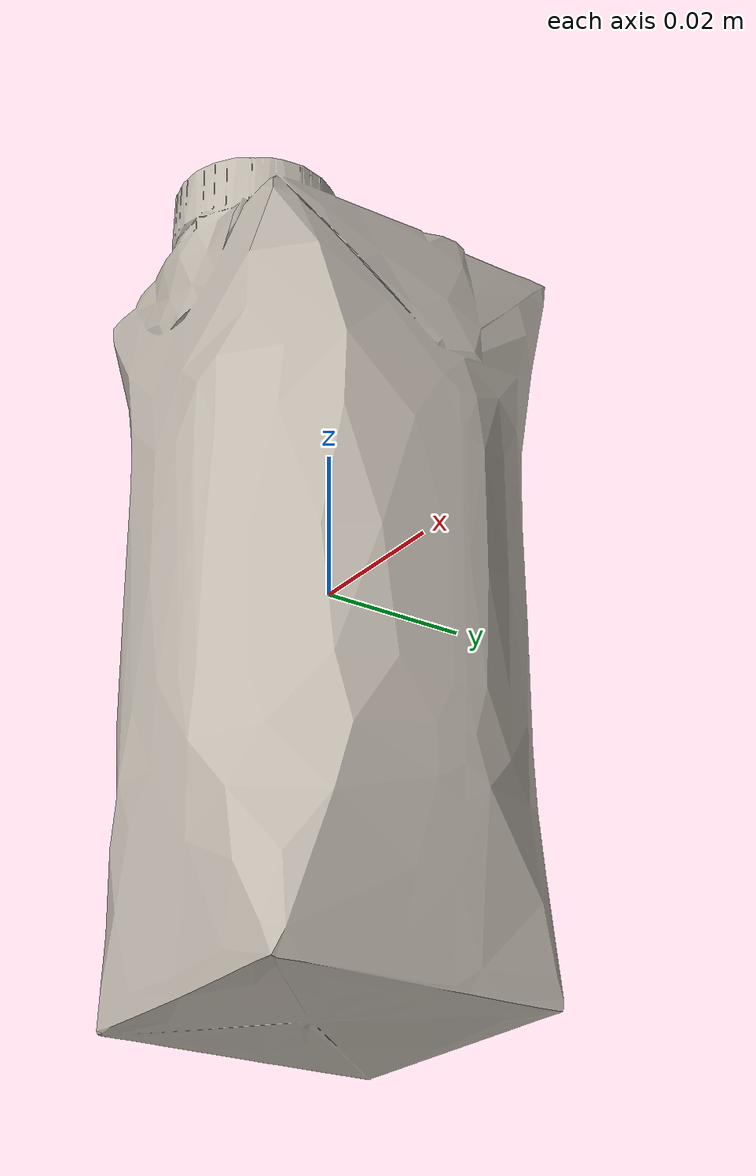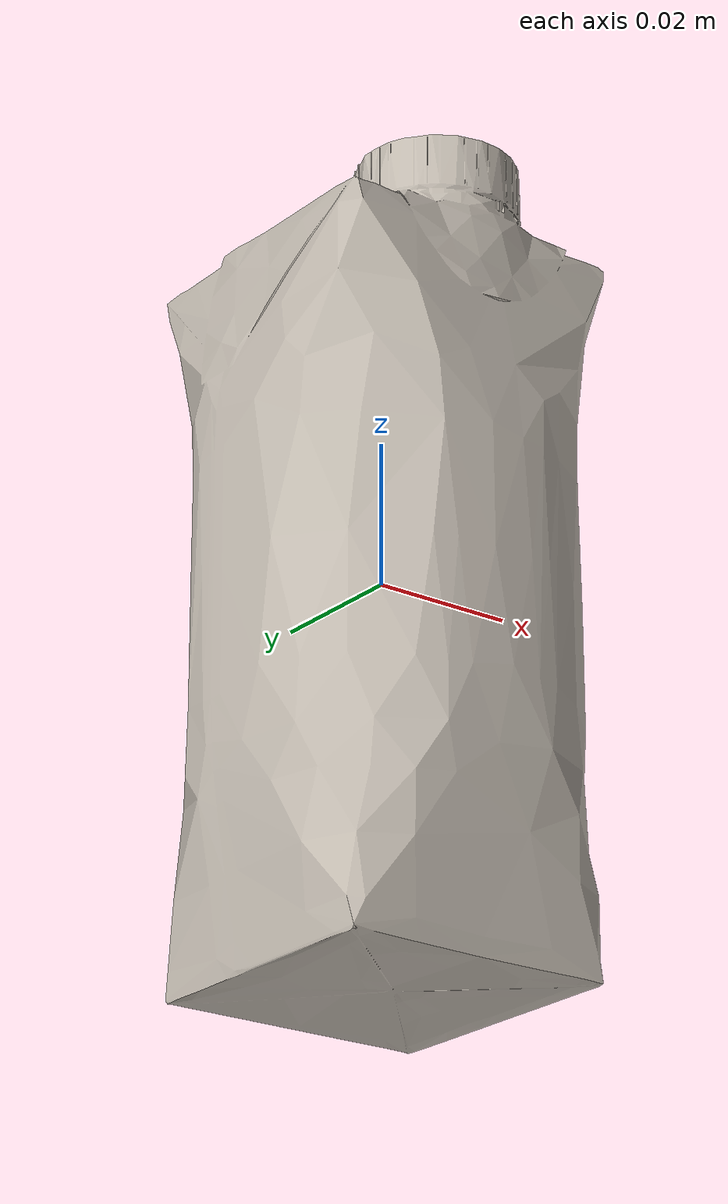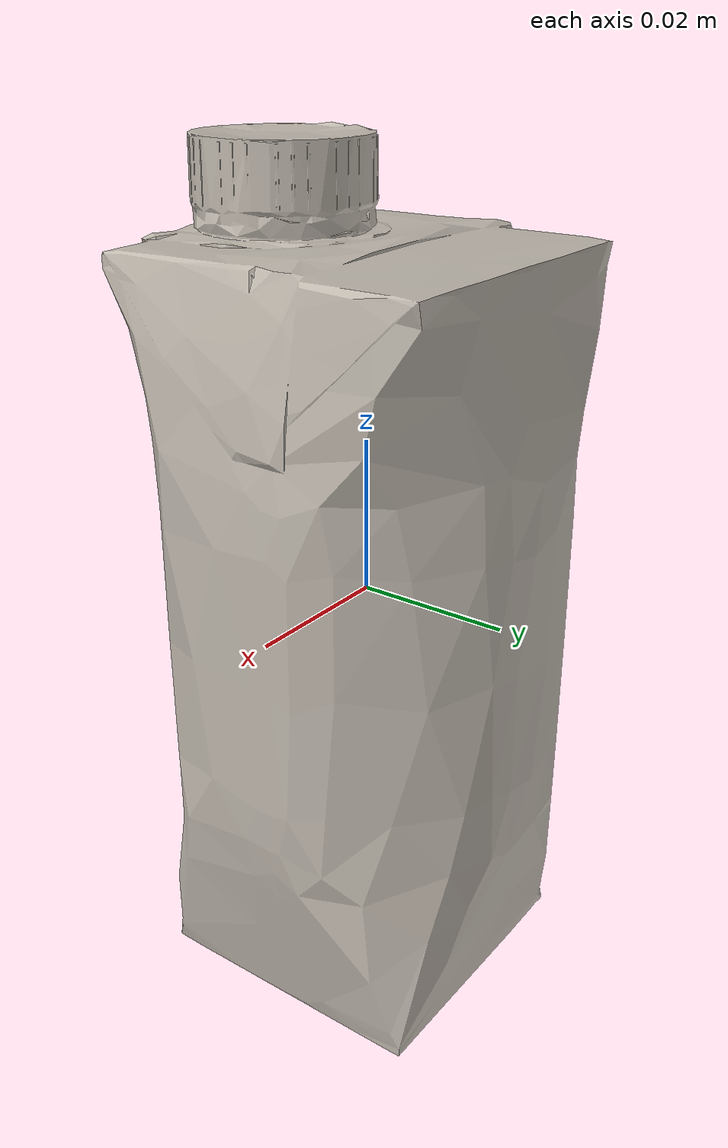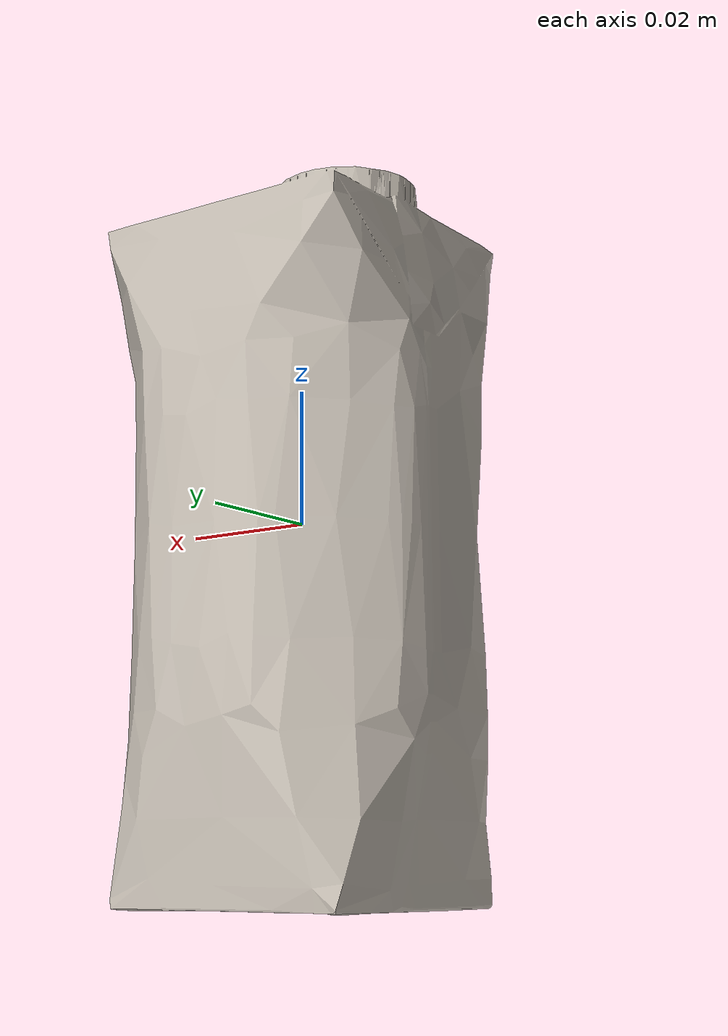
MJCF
<mujoco model="milk_7">
  <asset>
    <texture file="/home/abhiram03/Desktop/mimicgen/robosuite-kitchen/robosuite/models/assets/textures/ceramic.png" name="tex-milk_7" type="2d"/>
    <material name="milk_7" reflectance="0.5" texrepeat="1 1" texture="tex-milk_7" texuniform="false"/>
    <mesh file="visual/model_normalized_0.obj" name="model_normalized_0_vis" scale="0.11000000000000001 0.11000000000000001 0.11000000000000001" refquat="1.0 0.0 0.0 0.0"/>
    <mesh file="collision/model_normalized_collision_13.obj" name="model_normalized_collision_13._coll" scale="0.11000000000000001 0.11000000000000001 0.11000000000000001" refquat="1.0 0.0 0.0 0.0"/>
    <mesh file="collision/model_normalized_collision_15.obj" name="model_normalized_collision_15._coll" scale="0.11000000000000001 0.11000000000000001 0.11000000000000001" refquat="1.0 0.0 0.0 0.0"/>
    <mesh file="collision/model_normalized_collision_10.obj" name="model_normalized_collision_10._coll" scale="0.11000000000000001 0.11000000000000001 0.11000000000000001" refquat="1.0 0.0 0.0 0.0"/>
    <mesh file="collision/model_normalized_collision_26.obj" name="model_normalized_collision_26._coll" scale="0.11000000000000001 0.11000000000000001 0.11000000000000001" refquat="1.0 0.0 0.0 0.0"/>
    <mesh file="collision/model_normalized_collision_25.obj" name="model_normalized_collision_25._coll" scale="0.11000000000000001 0.11000000000000001 0.11000000000000001" refquat="1.0 0.0 0.0 0.0"/>
    <mesh file="collision/model_normalized_collision_5.obj" name="model_normalized_collision_5._coll" scale="0.11000000000000001 0.11000000000000001 0.11000000000000001" refquat="1.0 0.0 0.0 0.0"/>
    <mesh file="collision/model_normalized_collision_31.obj" name="model_normalized_collision_31._coll" scale="0.11000000000000001 0.11000000000000001 0.11000000000000001" refquat="1.0 0.0 0.0 0.0"/>
    <mesh file="collision/model_normalized_collision_3.obj" name="model_normalized_collision_3._coll" scale="0.11000000000000001 0.11000000000000001 0.11000000000000001" refquat="1.0 0.0 0.0 0.0"/>
    <mesh file="collision/model_normalized_collision_14.obj" name="model_normalized_collision_14._coll" scale="0.11000000000000001 0.11000000000000001 0.11000000000000001" refquat="1.0 0.0 0.0 0.0"/>
    <mesh file="collision/model_normalized_collision_28.obj" name="model_normalized_collision_28._coll" scale="0.11000000000000001 0.11000000000000001 0.11000000000000001" refquat="1.0 0.0 0.0 0.0"/>
    <mesh file="collision/model_normalized_collision_11.obj" name="model_normalized_collision_11._coll" scale="0.11000000000000001 0.11000000000000001 0.11000000000000001" refquat="1.0 0.0 0.0 0.0"/>
    <mesh file="collision/model_normalized_collision_29.obj" name="model_normalized_collision_29._coll" scale="0.11000000000000001 0.11000000000000001 0.11000000000000001" refquat="1.0 0.0 0.0 0.0"/>
    <mesh file="collision/model_normalized_collision_24.obj" name="model_normalized_collision_24._coll" scale="0.11000000000000001 0.11000000000000001 0.11000000000000001" refquat="1.0 0.0 0.0 0.0"/>
    <mesh file="collision/model_normalized_collision_1.obj" name="model_normalized_collision_1._coll" scale="0.11000000000000001 0.11000000000000001 0.11000000000000001" refquat="1.0 0.0 0.0 0.0"/>
    <mesh file="collision/model_normalized_collision_0.obj" name="model_normalized_collision_0._coll" scale="0.11000000000000001 0.11000000000000001 0.11000000000000001" refquat="1.0 0.0 0.0 0.0"/>
    <mesh file="collision/model_normalized_collision_27.obj" name="model_normalized_collision_27._coll" scale="0.11000000000000001 0.11000000000000001 0.11000000000000001" refquat="1.0 0.0 0.0 0.0"/>
    <mesh file="collision/model_normalized_collision_9.obj" name="model_normalized_collision_9._coll" scale="0.11000000000000001 0.11000000000000001 0.11000000000000001" refquat="1.0 0.0 0.0 0.0"/>
    <mesh file="collision/model_normalized_collision_19.obj" name="model_normalized_collision_19._coll" scale="0.11000000000000001 0.11000000000000001 0.11000000000000001" refquat="1.0 0.0 0.0 0.0"/>
    <mesh file="collision/model_normalized_collision_21.obj" name="model_normalized_collision_21._coll" scale="0.11000000000000001 0.11000000000000001 0.11000000000000001" refquat="1.0 0.0 0.0 0.0"/>
    <mesh file="collision/model_normalized_collision_30.obj" name="model_normalized_collision_30._coll" scale="0.11000000000000001 0.11000000000000001 0.11000000000000001" refquat="1.0 0.0 0.0 0.0"/>
    <mesh file="collision/model_normalized_collision_20.obj" name="model_normalized_collision_20._coll" scale="0.11000000000000001 0.11000000000000001 0.11000000000000001" refquat="1.0 0.0 0.0 0.0"/>
    <mesh file="collision/model_normalized_collision_2.obj" name="model_normalized_collision_2._coll" scale="0.11000000000000001 0.11000000000000001 0.11000000000000001" refquat="1.0 0.0 0.0 0.0"/>
    <mesh file="collision/model_normalized_collision_7.obj" name="model_normalized_collision_7._coll" scale="0.11000000000000001 0.11000000000000001 0.11000000000000001" refquat="1.0 0.0 0.0 0.0"/>
    <mesh file="collision/model_normalized_collision_22.obj" name="model_normalized_collision_22._coll" scale="0.11000000000000001 0.11000000000000001 0.11000000000000001" refquat="1.0 0.0 0.0 0.0"/>
    <mesh file="collision/model_normalized_collision_16.obj" name="model_normalized_collision_16._coll" scale="0.11000000000000001 0.11000000000000001 0.11000000000000001" refquat="1.0 0.0 0.0 0.0"/>
    <mesh file="collision/model_normalized_collision_8.obj" name="model_normalized_collision_8._coll" scale="0.11000000000000001 0.11000000000000001 0.11000000000000001" refquat="1.0 0.0 0.0 0.0"/>
    <mesh file="collision/model_normalized_collision_6.obj" name="model_normalized_collision_6._coll" scale="0.11000000000000001 0.11000000000000001 0.11000000000000001" refquat="1.0 0.0 0.0 0.0"/>
    <mesh file="collision/model_normalized_collision_18.obj" name="model_normalized_collision_18._coll" scale="0.11000000000000001 0.11000000000000001 0.11000000000000001" refquat="1.0 0.0 0.0 0.0"/>
    <mesh file="collision/model_normalized_collision_17.obj" name="model_normalized_collision_17._coll" scale="0.11000000000000001 0.11000000000000001 0.11000000000000001" refquat="1.0 0.0 0.0 0.0"/>
    <mesh file="collision/model_normalized_collision_12.obj" name="model_normalized_collision_12._coll" scale="0.11000000000000001 0.11000000000000001 0.11000000000000001" refquat="1.0 0.0 0.0 0.0"/>
    <mesh file="collision/model_normalized_collision_4.obj" name="model_normalized_collision_4._coll" scale="0.11000000000000001 0.11000000000000001 0.11000000000000001" refquat="1.0 0.0 0.0 0.0"/>
    <mesh file="collision/model_normalized_collision_23.obj" name="model_normalized_collision_23._coll" scale="0.11000000000000001 0.11000000000000001 0.11000000000000001" refquat="1.0 0.0 0.0 0.0"/>
    <texture type="2d" name="1c3dea6e9b00_milk__3d_asset_0_gl_texture_kd" file="visual/1c3dea6e9b00_milk__3d_asset_0_gl_texture_kd.png"/>
    <material name="Material_0" texture="1c3dea6e9b00_milk__3d_asset_0_gl_texture_kd" specular="0.5" shininess="0.5"/>
  </asset>
  <worldbody>
    <body>
      <body name="object">
        <geom solimp="0.998 0.998 0.001" solref="0.001 1" density="100" friction="0.95 0.3 0.1" type="mesh" mesh="model_normalized_0_vis" conaffinity="0" contype="0" group="1" material="Material_0"/>
        <geom solimp="0.998 0.998 0.001" solref="0.001 1" density="100" friction="0.95 0.3 0.1" type="mesh" mesh="model_normalized_collision_13._coll" group="0" rgba="0.8 0.8 0.8 0.0"/>
        <geom solimp="0.998 0.998 0.001" solref="0.001 1" density="100" friction="0.95 0.3 0.1" type="mesh" mesh="model_normalized_collision_15._coll" group="0" rgba="0.8 0.8 0.8 0.0"/>
        <geom solimp="0.998 0.998 0.001" solref="0.001 1" density="100" friction="0.95 0.3 0.1" type="mesh" mesh="model_normalized_collision_10._coll" group="0" rgba="0.8 0.8 0.8 0.0"/>
        <geom solimp="0.998 0.998 0.001" solref="0.001 1" density="100" friction="0.95 0.3 0.1" type="mesh" mesh="model_normalized_collision_26._coll" group="0" rgba="0.8 0.8 0.8 0.0"/>
        <geom solimp="0.998 0.998 0.001" solref="0.001 1" density="100" friction="0.95 0.3 0.1" type="mesh" mesh="model_normalized_collision_25._coll" group="0" rgba="0.8 0.8 0.8 0.0"/>
        <geom solimp="0.998 0.998 0.001" solref="0.001 1" density="100" friction="0.95 0.3 0.1" type="mesh" mesh="model_normalized_collision_5._coll" group="0" rgba="0.8 0.8 0.8 0.0"/>
        <geom solimp="0.998 0.998 0.001" solref="0.001 1" density="100" friction="0.95 0.3 0.1" type="mesh" mesh="model_normalized_collision_31._coll" group="0" rgba="0.8 0.8 0.8 0.0"/>
        <geom solimp="0.998 0.998 0.001" solref="0.001 1" density="100" friction="0.95 0.3 0.1" type="mesh" mesh="model_normalized_collision_3._coll" group="0" rgba="0.8 0.8 0.8 0.0"/>
        <geom solimp="0.998 0.998 0.001" solref="0.001 1" density="100" friction="0.95 0.3 0.1" type="mesh" mesh="model_normalized_collision_14._coll" group="0" rgba="0.8 0.8 0.8 0.0"/>
        <geom solimp="0.998 0.998 0.001" solref="0.001 1" density="100" friction="0.95 0.3 0.1" type="mesh" mesh="model_normalized_collision_28._coll" group="0" rgba="0.8 0.8 0.8 0.0"/>
        <geom solimp="0.998 0.998 0.001" solref="0.001 1" density="100" friction="0.95 0.3 0.1" type="mesh" mesh="model_normalized_collision_11._coll" group="0" rgba="0.8 0.8 0.8 0.0"/>
        <geom solimp="0.998 0.998 0.001" solref="0.001 1" density="100" friction="0.95 0.3 0.1" type="mesh" mesh="model_normalized_collision_29._coll" group="0" rgba="0.8 0.8 0.8 0.0"/>
        <geom solimp="0.998 0.998 0.001" solref="0.001 1" density="100" friction="0.95 0.3 0.1" type="mesh" mesh="model_normalized_collision_24._coll" group="0" rgba="0.8 0.8 0.8 0.0"/>
        <geom solimp="0.998 0.998 0.001" solref="0.001 1" density="100" friction="0.95 0.3 0.1" type="mesh" mesh="model_normalized_collision_1._coll" group="0" rgba="0.8 0.8 0.8 0.0"/>
        <geom solimp="0.998 0.998 0.001" solref="0.001 1" density="100" friction="0.95 0.3 0.1" type="mesh" mesh="model_normalized_collision_0._coll" group="0" rgba="0.8 0.8 0.8 0.0"/>
        <geom solimp="0.998 0.998 0.001" solref="0.001 1" density="100" friction="0.95 0.3 0.1" type="mesh" mesh="model_normalized_collision_27._coll" group="0" rgba="0.8 0.8 0.8 0.0"/>
        <geom solimp="0.998 0.998 0.001" solref="0.001 1" density="100" friction="0.95 0.3 0.1" type="mesh" mesh="model_normalized_collision_9._coll" group="0" rgba="0.8 0.8 0.8 0.0"/>
        <geom solimp="0.998 0.998 0.001" solref="0.001 1" density="100" friction="0.95 0.3 0.1" type="mesh" mesh="model_normalized_collision_19._coll" group="0" rgba="0.8 0.8 0.8 0.0"/>
        <geom solimp="0.998 0.998 0.001" solref="0.001 1" density="100" friction="0.95 0.3 0.1" type="mesh" mesh="model_normalized_collision_21._coll" group="0" rgba="0.8 0.8 0.8 0.0"/>
        <geom solimp="0.998 0.998 0.001" solref="0.001 1" density="100" friction="0.95 0.3 0.1" type="mesh" mesh="model_normalized_collision_30._coll" group="0" rgba="0.8 0.8 0.8 0.0"/>
        <geom solimp="0.998 0.998 0.001" solref="0.001 1" density="100" friction="0.95 0.3 0.1" type="mesh" mesh="model_normalized_collision_20._coll" group="0" rgba="0.8 0.8 0.8 0.0"/>
        <geom solimp="0.998 0.998 0.001" solref="0.001 1" density="100" friction="0.95 0.3 0.1" type="mesh" mesh="model_normalized_collision_2._coll" group="0" rgba="0.8 0.8 0.8 0.0"/>
        <geom solimp="0.998 0.998 0.001" solref="0.001 1" density="100" friction="0.95 0.3 0.1" type="mesh" mesh="model_normalized_collision_7._coll" group="0" rgba="0.8 0.8 0.8 0.0"/>
        <geom solimp="0.998 0.998 0.001" solref="0.001 1" density="100" friction="0.95 0.3 0.1" type="mesh" mesh="model_normalized_collision_22._coll" group="0" rgba="0.8 0.8 0.8 0.0"/>
        <geom solimp="0.998 0.998 0.001" solref="0.001 1" density="100" friction="0.95 0.3 0.1" type="mesh" mesh="model_normalized_collision_16._coll" group="0" rgba="0.8 0.8 0.8 0.0"/>
        <geom solimp="0.998 0.998 0.001" solref="0.001 1" density="100" friction="0.95 0.3 0.1" type="mesh" mesh="model_normalized_collision_8._coll" group="0" rgba="0.8 0.8 0.8 0.0"/>
        <geom solimp="0.998 0.998 0.001" solref="0.001 1" density="100" friction="0.95 0.3 0.1" type="mesh" mesh="model_normalized_collision_6._coll" group="0" rgba="0.8 0.8 0.8 0.0"/>
        <geom solimp="0.998 0.998 0.001" solref="0.001 1" density="100" friction="0.95 0.3 0.1" type="mesh" mesh="model_normalized_collision_18._coll" group="0" rgba="0.8 0.8 0.8 0.0"/>
        <geom solimp="0.998 0.998 0.001" solref="0.001 1" density="100" friction="0.95 0.3 0.1" type="mesh" mesh="model_normalized_collision_17._coll" group="0" rgba="0.8 0.8 0.8 0.0"/>
        <geom solimp="0.998 0.998 0.001" solref="0.001 1" density="100" friction="0.95 0.3 0.1" type="mesh" mesh="model_normalized_collision_12._coll" group="0" rgba="0.8 0.8 0.8 0.0"/>
        <geom solimp="0.998 0.998 0.001" solref="0.001 1" density="100" friction="0.95 0.3 0.1" type="mesh" mesh="model_normalized_collision_4._coll" group="0" rgba="0.8 0.8 0.8 0.0"/>
        <geom solimp="0.998 0.998 0.001" solref="0.001 1" density="100" friction="0.95 0.3 0.1" type="mesh" mesh="model_normalized_collision_23._coll" group="0" rgba="0.8 0.8 0.8 0.0"/>
      </body>
      <site rgba="0 0 0 0" size="0.005" pos="0.0003642649999999995 0.00017627555000000047 -0.055833334699999994" name="bottom_site"/>
      <site rgba="0 0 0 0" size="0.005" pos="0.0003642649999999995 0.00017627555000000047 0.055833332500000006" name="top_site"/>
      <site rgba="0 0 0 0" size="0.005" pos="0.02869759860000001 0.028509608600000003 -1.0999999994210087e-09" name="horizontal_radius_site"/>
    </body>
  </worldbody>
</mujoco>
